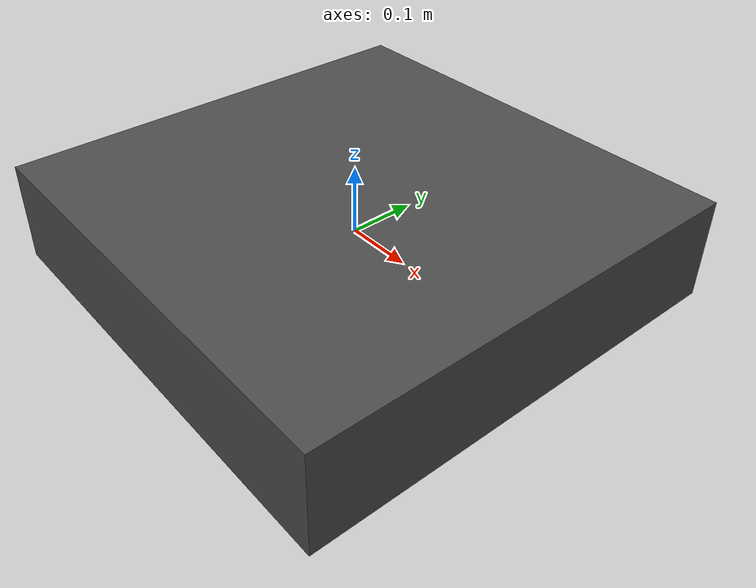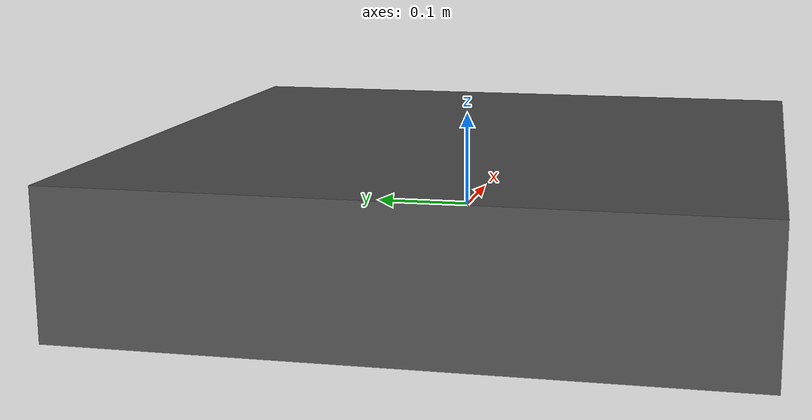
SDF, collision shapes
<sdf version='1.5'>
    <model name='borinot'>
      <link name='base_link'>
        <pose>0 0 0 0 0 0</pose>
        <inertial>
          <pose>0 0 0 0 0 0</pose>
          <mass>2.085</mass>
          <inertia>
            <ixx>0.017598</ixx>
            <ixy>0.0</ixy>
            <ixz>0.0</ixz>
            <iyy>0.017957</iyy>
            <iyz>0.0</iyz>
            <izz>0.029599</izz>
          </inertia>
        </inertial>
        <!-- TODO: check that is touching the ground -->
        <collision name='base_link_collision'>
          <pose>0 0 0.0 0 0 0</pose>
          <geometry>
            <box>
              <size>0.67 0.67 0.15</size>
            </box>
          </geometry>
          <surface>
            <contact>
              <ode>
                <min_depth>0.001</min_depth>
                <max_vel>0</max_vel>
              </ode>
            </contact>
            <friction>
              <ode/>
            </friction>
          </surface>
        </collision>
        <visual name='base_link_visual'>
          <pose>0 0 0 0 0 0</pose>
          <geometry>
            <mesh>
              <scale>1 1 1</scale>
              <!-- TODO: add specific borinot mesh -->
              <uri>model://borinot/meshes/hexacopter370.dae</uri>
            </mesh>
          </geometry>
          <material>
            <script>
              <name>Gazebo/DarkGrey</name>
              <uri>file://media/materials/scripts/gazebo.material</uri>
            </script>
          </material>
        </visual>
        <gravity>1</gravity>
        <velocity_decay/>
      </link>
      <link name='/imu_link'>
        <pose>0 0 0 0 0 0</pose>
        <inertial>
          <pose>0 0 0 0 0 0</pose>
          <mass>0.015</mass>
          <inertia>
            <ixx>1e-05</ixx>
            <ixy>0</ixy>
            <ixz>0</ixz>
            <iyy>1e-05</iyy>
            <iyz>0</iyz>
            <izz>1e-05</izz>
          </inertia>
        </inertial>
      </link>
      <joint name='imu_joint' type='revolute'>
        <child>/imu_link</child>
        <parent>base_link</parent>
        <axis>
          <xyz>1 0 0</xyz>
          <limit>
            <lower>0</lower>
            <upper>0</upper>
            <effort>0</effort>
            <velocity>0</velocity>
          </limit>
          <dynamics>
            <spring_reference>0</spring_reference>
            <spring_stiffness>0</spring_stiffness>
          </dynamics>
          <use_parent_model_frame>1</use_parent_model_frame>
        </axis>
      </joint>
      <link name='rotor_0'>
        <pose> 0 -0.185 0.05 0 0 0</pose>
        <inertial>
          <pose>0 0 0 0 0 0</pose>
          <mass>0.005</mass>
          <inertia>
            <ixx>9.75e-07</ixx>
            <ixy>0</ixy>
            <ixz>0</ixz>
            <iyy>0.000273104</iyy>
            <iyz>0</iyz>
            <izz>0.000274004</izz>
          </inertia>
        </inertial>
        <collision name='rotor_0_collision'>
          <pose>0 0 0 0 0 0</pose>
          <geometry>
            <cylinder>
              <length>0.005</length>
              <radius>0.128</radius>
            </cylinder>
          </geometry>
          <surface>
            <contact>
              <ode/>
            </contact>
            <friction>
              <ode/>
            </friction>
          </surface>
        </collision>
        <visual name='rotor_0_visual'>
          <pose>0 0 0 0 0 0</pose>
          <geometry>
            <mesh>
              <scale>1 1 1</scale>
              <uri>model://iris/meshes/iris_prop_cw.dae</uri>
            </mesh>
          </geometry>
          <material>
            <script>
              <name>Gazebo/DarkGrey</name>
              <uri>file://media/materials/scripts/gazebo.material</uri>
            </script>
          </material>
        </visual>
        <gravity>1</gravity>
        <velocity_decay/>
      </link>
      <joint name='rotor_0_joint' type='revolute'>
        <child>rotor_0</child>
        <parent>base_link</parent>
        <axis>
          <xyz>0 0 1</xyz>
          <limit>
            <lower>-1e+16</lower>
            <upper>1e+16</upper>
          </limit>
          <dynamics>
            <spring_reference>0</spring_reference>
            <spring_stiffness>0</spring_stiffness>
          </dynamics>
          <use_parent_model_frame>1</use_parent_model_frame>
        </axis>
      </joint>
      <link name='rotor_1'>
        <pose>0 0.185 0.05 0 0 0</pose>
        <inertial>
          <pose>0 0 0 0 0 0</pose>
          <mass>0.005</mass>
          <inertia>
            <ixx>9.75e-07</ixx>
            <ixy>0</ixy>
            <ixz>0</ixz>
            <iyy>0.000273104</iyy>
            <iyz>0</iyz>
            <izz>0.000274004</izz>
          </inertia>
        </inertial>
        <collision name='rotor_1_collision'>
          <pose>0 0 0 0 0 0</pose>
          <geometry>
            <cylinder>
              <length>0.005</length>
              <radius>0.128</radius>
            </cylinder>
          </geometry>
          <surface>
            <contact>
              <ode/>
            </contact>
            <friction>
              <ode/>
            </friction>
          </surface>
        </collision>
        <visual name='rotor_1_visual'>
          <pose>0 0 0 0 0 0</pose>
          <geometry>
            <mesh>
              <scale>1 1 1</scale>
              <uri>model://iris/meshes/iris_prop_ccw.dae</uri>
            </mesh>
          </geometry>
          <material>
            <script>
              <name>Gazebo/DarkGrey</name>
              <uri>file://media/materials/scripts/gazebo.material</uri>
            </script>
          </material>
        </visual>
        <gravity>1</gravity>
        <velocity_decay/>
      </link>
      <joint name='rotor_1_joint' type='revolute'>
        <child>rotor_1</child>
        <parent>base_link</parent>
        <axis>
          <xyz>0 0 1</xyz>
          <limit>
            <lower>-1e+16</lower>
            <upper>1e+16</upper>
          </limit>
          <dynamics>
            <spring_reference>0</spring_reference>
            <spring_stiffness>0</spring_stiffness>
          </dynamics>
          <use_parent_model_frame>1</use_parent_model_frame>
        </axis>
      </joint>
      <link name='rotor_2'>
        <pose>0.1602146997 0.0925 0.05 0 0 0</pose>
        <inertial>
          <pose>0 0 0 0 0 0</pose>
          <mass>0.005</mass>
          <inertia>
            <ixx>9.75e-07</ixx>
            <ixy>0</ixy>
            <ixz>0</ixz>
            <iyy>0.000273104</iyy>
            <iyz>0</iyz>
            <izz>0.000274004</izz>
          </inertia>
        </inertial>
        <collision name='rotor_2_collision'>
          <pose>0 0 0 0 0 0</pose>
          <geometry>
            <cylinder>
              <length>0.005</length>
              <radius>0.128</radius>
            </cylinder>
          </geometry>
          <surface>
            <contact>
              <ode/>
            </contact>
            <friction>
              <ode/>
            </friction>
          </surface>
        </collision>
        <visual name='rotor_2_visual'>
          <pose>0 0 0 0 0 0</pose>
          <geometry>
            <mesh>
              <scale>1 1 1</scale>
              <uri>model://iris/meshes/iris_prop_cw.dae</uri>
            </mesh>
          </geometry>
          <material>
            <script>
              <name>Gazebo/Blue</name>
              <uri>file://media/materials/scripts/gazebo.material</uri>
            </script>
          </material>
        </visual>
        <gravity>1</gravity>
        <velocity_decay/>
      </link>
      <joint name='rotor_2_joint' type='revolute'>
        <child>rotor_2</child>
        <parent>base_link</parent>
        <axis>
          <xyz>0 0 1</xyz>
          <limit>
            <lower>-1e+16</lower>
            <upper>1e+16</upper>
          </limit>
          <dynamics>
            <spring_reference>0</spring_reference>
            <spring_stiffness>0</spring_stiffness>
          </dynamics>
          <use_parent_model_frame>1</use_parent_model_frame>
        </axis>
      </joint>
      <link name='rotor_3'>
        <pose>-0.1602146997 -0.0925 0.05 0 0 0</pose>
        <inertial>
          <pose>0 0 0 0 0 0</pose>
          <mass>0.005</mass>
          <inertia>
            <ixx>9.75e-07</ixx>
            <ixy>0</ixy>
            <ixz>0</ixz>
            <iyy>0.000273104</iyy>
            <iyz>0</iyz>
            <izz>0.000274004</izz>
          </inertia>
        </inertial>
        <collision name='rotor_3_collision'>
          <pose>0 0 0 0 0 0</pose>
          <geometry>
            <cylinder>
              <length>0.005</length>
              <radius>0.128</radius>
            </cylinder>
          </geometry>
          <surface>
            <contact>
              <ode/>
            </contact>
            <friction>
              <ode/>
            </friction>
          </surface>
        </collision>
        <visual name='rotor_3_visual'>
          <pose>0 0 0 0 0 0</pose>
          <geometry>
            <mesh>
              <scale>1 1 1</scale>
              <uri>model://iris/meshes/iris_prop_ccw.dae</uri>
            </mesh>
          </geometry>
          <material>
            <script>
              <name>Gazebo/DarkGrey</name>
              <uri>file://media/materials/scripts/gazebo.material</uri>
            </script>
          </material>
        </visual>
        <gravity>1</gravity>
        <velocity_decay/>
      </link>
      <joint name='rotor_3_joint' type='revolute'>
        <child>rotor_3</child>
        <parent>base_link</parent>
        <axis>
          <xyz>0 0 1</xyz>
          <limit>
            <lower>-1e+16</lower>
            <upper>1e+16</upper>
          </limit>
          <dynamics>
            <spring_reference>0</spring_reference>
            <spring_stiffness>0</spring_stiffness>
          </dynamics>
          <use_parent_model_frame>1</use_parent_model_frame>
        </axis>
      </joint>
      <link name='rotor_4'>
        <pose>0.1602146997 -0.0925 0.05 0 0 0</pose>
        <inertial>
          <pose>0 0 0 0 0 0</pose>
          <mass>0.005</mass>
          <inertia>
            <ixx>9.75e-07</ixx>
            <ixy>0</ixy>
            <ixz>0</ixz>
            <iyy>0.000273104</iyy>
            <iyz>0</iyz>
            <izz>0.000274004</izz>
          </inertia>
        </inertial>
        <collision name='rotor_4_collision'>
          <pose>0 0 0 0 0 0</pose>
          <geometry>
            <cylinder>
              <length>0.005</length>
              <radius>0.128</radius>
            </cylinder>
          </geometry>
          <surface>
            <contact>
              <ode/>
            </contact>
            <friction>
              <ode/>
            </friction>
          </surface>
        </collision>
        <visual name='rotor_4_visual'>
          <pose>0 0 0 0 0 0</pose>
          <geometry>
            <mesh>
              <scale>1 1 1</scale>
              <uri>model://iris/meshes/iris_prop_ccw.dae</uri>
            </mesh>
          </geometry>
          <material>
            <script>
              <name>Gazebo/Blue</name>
              <uri>file://media/materials/scripts/gazebo.material</uri>
            </script>
          </material>
        </visual>
        <gravity>1</gravity>
        <velocity_decay/>
      </link>
      <joint name='rotor_4_joint' type='revolute'>
        <child>rotor_4</child>
        <parent>base_link</parent>
        <axis>
          <xyz>0 0 1</xyz>
          <limit>
            <lower>-1e+16</lower>
            <upper>1e+16</upper>
          </limit>
          <dynamics>
            <spring_reference>0</spring_reference>
            <spring_stiffness>0</spring_stiffness>
          </dynamics>
          <use_parent_model_frame>1</use_parent_model_frame>
        </axis>
      </joint>
      <link name='rotor_5'>
        <pose>-0.1602146997 0.0925 0.05 0 0 0</pose>
        <inertial>
          <pose>0 0 0 0 0 0</pose>
          <mass>0.005</mass>
          <inertia>
            <ixx>9.75e-07</ixx>
            <ixy>0</ixy>
            <ixz>0</ixz>
            <iyy>0.000273104</iyy>
            <iyz>0</iyz>
            <izz>0.000274004</izz>
          </inertia>
        </inertial>
        <collision name='rotor_5_collision'>
          <pose>0 0 0 0 0 0</pose>
          <geometry>
            <cylinder>
              <length>0.005</length>
              <radius>0.128</radius>
            </cylinder>
          </geometry>
          <surface>
            <contact>
              <ode/>
            </contact>
            <friction>
              <ode/>
            </friction>
          </surface>
        </collision>
        <visual name='rotor_5_visual'>
          <pose>0 0 0 0 0 0</pose>
          <geometry>
            <mesh>
              <scale>1 1 1</scale>
              <uri>model://iris/meshes/iris_prop_cw.dae</uri>
            </mesh>
          </geometry>
          <material>
            <script>
              <name>Gazebo/DarkGrey</name>
              <uri>file://media/materials/scripts/gazebo.material</uri>
            </script>
          </material>
        </visual>
        <gravity>1</gravity>
        <velocity_decay/>
      </link>
      <joint name='rotor_5_joint' type='revolute'>
        <child>rotor_5</child>
        <parent>base_link</parent>
        <axis>
          <xyz>0 0 1</xyz>
          <limit>
            <lower>-1e+16</lower>
            <upper>1e+16</upper>
          </limit>
          <dynamics>
            <spring_reference>0</spring_reference>
            <spring_stiffness>0</spring_stiffness>
          </dynamics>
          <use_parent_model_frame>1</use_parent_model_frame>
        </axis>
      </joint>
      <plugin name='rosbag' filename='libgazebo_multirotor_base_plugin.so'>
        <robotNamespace></robotNamespace>
        <linkName>base_link</linkName>
        <rotorVelocitySlowdownSim>10</rotorVelocitySlowdownSim>
      </plugin>
      <plugin name='right_motor_model' filename='libgazebo_motor_model.so'>
        <robotNamespace></robotNamespace>
        <jointName>rotor_0_joint</jointName>
        <linkName>rotor_0</linkName>
        <turningDirection>cw</turningDirection>
        <!-- time constant identified by sergi -->
        <timeConstantUp>0.005</timeConstantUp>
        <timeConstantDown>0.005</timeConstantDown>
        <!-- tmotor f90 kv1300 datasheet, 6S GF 7042 -->
        <!--
            max rpm: 21350 = 2236rad/s
            max thrust: 2110g = 20.6991N
            cf computed with 60% thrust values (1196g at 15400rpm)
            cf =
        -->
        <maxRotVelocity>2236</maxRotVelocity>
        <motorConstant>4.511e-06</motorConstant>
        <!-- TODO: moment constant to be identified -->
        <momentConstant>0.06</momentConstant>
        <commandSubTopic>/gazebo/command/motor_speed</commandSubTopic>
        <motorNumber>0</motorNumber>
        <!-- TODO: don't know what this constant does -->
        <rotorDragCoefficient>0.000175</rotorDragCoefficient>
        <rollingMomentCoefficient>1e-06</rollingMomentCoefficient>
        <motorSpeedPubTopic>/motor_speed/0</motorSpeedPubTopic>
        <rotorVelocitySlowdownSim>10</rotorVelocitySlowdownSim>
      </plugin>

      <plugin name='left_motor_model' filename='libgazebo_motor_model.so'>
        <robotNamespace></robotNamespace>
        <jointName>rotor_1_joint</jointName>
        <linkName>rotor_1</linkName>
        <turningDirection>ccw</turningDirection>
        <!-- time constant identified by sergi -->
        <timeConstantUp>0.005</timeConstantUp>
        <timeConstantDown>0.005</timeConstantDown>
        <!-- tmotor f90 kv1300 datasheet, 6S GF 7042 -->
        <!--
            max rpm: 21350 = 2236rad/s
            max thrust: 2110g = 20.6991N
            cf computed with 60% thrust values (1196g at 15400rpm)
            cf =
        -->
        <maxRotVelocity>2236</maxRotVelocity>
        <motorConstant>4.511e-06</motorConstant>
        <!-- TODO: moment constant to be identified -->
        <momentConstant>0.06</momentConstant>
        <commandSubTopic>/gazebo/command/motor_speed</commandSubTopic>
        <motorNumber>1</motorNumber>
        <!-- TODO: don't know what this constant does -->
        <rotorDragCoefficient>0.000175</rotorDragCoefficient>
        <rollingMomentCoefficient>1e-06</rollingMomentCoefficient>
        <motorSpeedPubTopic>/motor_speed/1</motorSpeedPubTopic>
        <rotorVelocitySlowdownSim>10</rotorVelocitySlowdownSim>
      </plugin>

      <plugin name='left_front_motor_model' filename='libgazebo_motor_model.so'>
        <robotNamespace></robotNamespace>
        <jointName>rotor_2_joint</jointName>
        <linkName>rotor_2</linkName>
        <turningDirection>cw</turningDirection>
        <!-- time constant identified by sergi -->
        <timeConstantUp>0.005</timeConstantUp>
        <timeConstantDown>0.005</timeConstantDown>
        <!-- tmotor f90 kv1300 datasheet, 6S GF 7042 -->
        <!--
            max rpm: 21350 = 2236rad/s
            max thrust: 2110g = 20.6991N
            cf computed with 60% thrust values (1196g at 15400rpm)
            cf =
        -->
        <maxRotVelocity>2236</maxRotVelocity>
        <motorConstant>4.511e-06</motorConstant>
        <!-- TODO: moment constant to be identified -->
        <momentConstant>0.06</momentConstant>
        <commandSubTopic>/gazebo/command/motor_speed</commandSubTopic>
        <motorNumber>2</motorNumber>
        <!-- TODO: don't know what this constant does -->
        <rotorDragCoefficient>0.000175</rotorDragCoefficient>
        <rollingMomentCoefficient>1e-06</rollingMomentCoefficient>
        <motorSpeedPubTopic>/motor_speed/2</motorSpeedPubTopic>
        <rotorVelocitySlowdownSim>10</rotorVelocitySlowdownSim>
      </plugin>

      <plugin name='right_back_motor_model' filename='libgazebo_motor_model.so'>
        <robotNamespace></robotNamespace>
        <jointName>rotor_3_joint</jointName>
        <linkName>rotor_3</linkName>
        <turningDirection>ccw</turningDirection>
        <!-- time constant identified by sergi -->
        <timeConstantUp>0.005</timeConstantUp>
        <timeConstantDown>0.005</timeConstantDown>
        <!-- tmotor f90 kv1300 datasheet, 6S GF 7042 -->
        <!--
            max rpm: 21350 = 2236rad/s
            max thrust: 2110g = 20.6991N
            cf computed with 60% thrust values (1196g at 15400rpm)
            cf =
        -->
        <maxRotVelocity>2236</maxRotVelocity>
        <motorConstant>4.511e-06</motorConstant>
        <!-- TODO: moment constant to be identified -->
        <momentConstant>0.06</momentConstant>
        <commandSubTopic>/gazebo/command/motor_speed</commandSubTopic>
        <motorNumber>3</motorNumber>
        <!-- TODO: don't know what this constant does -->
        <rotorDragCoefficient>0.000175</rotorDragCoefficient>
        <rollingMomentCoefficient>1e-06</rollingMomentCoefficient>
        <motorSpeedPubTopic>/motor_speed/3</motorSpeedPubTopic>
        <rotorVelocitySlowdownSim>10</rotorVelocitySlowdownSim>
      </plugin>

      <plugin name='right_front_motor_model' filename='libgazebo_motor_model.so'>
        <robotNamespace></robotNamespace>
        <jointName>rotor_4_joint</jointName>
        <linkName>rotor_4</linkName>
        <turningDirection>ccw</turningDirection>
        <!-- time constant identified by sergi -->
        <timeConstantUp>0.005</timeConstantUp>
        <timeConstantDown>0.005</timeConstantDown>
        <!-- tmotor f90 kv1300 datasheet, 6S GF 7042 -->
        <!--
            max rpm: 21350 = 2236rad/s
            max thrust: 2110g = 20.6991N
            cf computed with 60% thrust values (1196g at 15400rpm)
            cf =
        -->
        <maxRotVelocity>2236</maxRotVelocity>
        <motorConstant>4.511e-06</motorConstant>
        <!-- TODO: moment constant to be identified -->
        <momentConstant>0.06</momentConstant>
        <commandSubTopic>/gazebo/command/motor_speed</commandSubTopic>
        <motorNumber>4</motorNumber>
        <!-- TODO: don't know what this constant does -->
        <rotorDragCoefficient>0.000175</rotorDragCoefficient>
        <rollingMomentCoefficient>1e-06</rollingMomentCoefficient>
        <motorSpeedPubTopic>/motor_speed/4</motorSpeedPubTopic>
        <rotorVelocitySlowdownSim>10</rotorVelocitySlowdownSim>
      </plugin>

      <plugin name='left_back_motor_model' filename='libgazebo_motor_model.so'>
        <robotNamespace></robotNamespace>
        <jointName>rotor_5_joint</jointName>
        <linkName>rotor_5</linkName>
        <turningDirection>cw</turningDirection>
        <!-- time constant identified by sergi -->
        <timeConstantUp>0.005</timeConstantUp>
        <timeConstantDown>0.005</timeConstantDown>
        <!-- tmotor f90 kv1300 datasheet, 6S GF 7042 -->
        <!--
            max rpm: 21350 = 2236rad/s
            max thrust: 2110g = 20.6991N
            cf computed with 60% thrust values (1196g at 15400rpm)
            cf =
        -->
        <maxRotVelocity>2236</maxRotVelocity>
        <motorConstant>4.511e-06</motorConstant>
        <!-- TODO: moment constant to be identified -->
        <momentConstant>0.06</momentConstant>
        <commandSubTopic>/gazebo/command/motor_speed</commandSubTopic>
        <motorNumber>5</motorNumber>
        <!-- TODO: don't know what this constant does -->
        <rotorDragCoefficient>0.000175</rotorDragCoefficient>
        <rollingMomentCoefficient>1e-06</rollingMomentCoefficient>
        <motorSpeedPubTopic>/motor_speed/5</motorSpeedPubTopic>
        <rotorVelocitySlowdownSim>10</rotorVelocitySlowdownSim>
      </plugin>
      <include>
        <uri>model://gps</uri>
        <pose>0.1 0 0 0 0 0</pose>
        <name>gps0</name>
      </include>
      <joint name='gps0_joint' type='fixed'>
        <child>gps0::link</child>
        <parent>base_link</parent>
      </joint>
      <plugin name='groundtruth_plugin' filename='libgazebo_groundtruth_plugin.so'>
        <robotNamespace/>
      </plugin>
      <plugin name='magnetometer_plugin' filename='libgazebo_magnetometer_plugin.so'>
        <robotNamespace/>
        <pubRate>100</pubRate>
        <noiseDensity>0.0004</noiseDensity>
        <randomWalk>6.4e-06</randomWalk>
        <biasCorrelationTime>600</biasCorrelationTime>
        <magTopic>/mag</magTopic>
      </plugin>
      <plugin name='barometer_plugin' filename='libgazebo_barometer_plugin.so'>
        <robotNamespace/>
        <pubRate>50</pubRate>
        <baroTopic>/baro</baroTopic>
      </plugin>
      <plugin name='mavlink_interface' filename='libgazebo_mavlink_interface.so'>
      <robotNamespace/>
      <imuSubTopic>/imu</imuSubTopic>
      <magSubTopic>/mag</magSubTopic>
      <baroSubTopic>/baro</baroSubTopic>
      <mavlink_addr>INADDR_ANY</mavlink_addr>
      <mavlink_tcp_port>4560</mavlink_tcp_port>
      <mavlink_udp_port>14560</mavlink_udp_port>
      <serialEnabled>0</serialEnabled>
      <serialDevice>/dev/ttyACM0</serialDevice>
      <baudRate>921600</baudRate>
      <qgc_addr>INADDR_ANY</qgc_addr>
      <qgc_udp_port>14550</qgc_udp_port>
      <sdk_addr>INADDR_ANY</sdk_addr>
      <sdk_udp_port>14540</sdk_udp_port>
      <hil_mode>0</hil_mode>
      <hil_state_level>0</hil_state_level>
      <send_vision_estimation>0</send_vision_estimation>
      <send_odometry>1</send_odometry>
      <enable_lockstep>1</enable_lockstep>
      <use_tcp>1</use_tcp>
      <motorSpeedCommandPubTopic>/gazebo/command/motor_speed</motorSpeedCommandPubTopic>
        <control_channels>
            <channel name='rotor1'>
              <input_index>0</input_index>
              <input_offset>0</input_offset>
              <input_scaling>2136</input_scaling>
              <zero_position_disarmed>0</zero_position_disarmed>
              <zero_position_armed>100</zero_position_armed>
              <joint_control_type>velocity</joint_control_type>
            </channel>
            <channel name='rotor2'>
              <input_index>1</input_index>
              <input_offset>0</input_offset>
              <input_scaling>2136</input_scaling>
              <zero_position_disarmed>0</zero_position_disarmed>
              <zero_position_armed>100</zero_position_armed>
              <joint_control_type>velocity</joint_control_type>
            </channel>
            <channel name='rotor3'>
              <input_index>2</input_index>
              <input_offset>0</input_offset>
              <input_scaling>2136</input_scaling>
              <zero_position_disarmed>0</zero_position_disarmed>
              <zero_position_armed>100</zero_position_armed>
              <joint_control_type>velocity</joint_control_type>
            </channel>
            <channel name='rotor4'>
              <input_index>3</input_index>
              <input_offset>0</input_offset>
              <input_scaling>2136</input_scaling>
              <zero_position_disarmed>0</zero_position_disarmed>
              <zero_position_armed>100</zero_position_armed>
              <joint_control_type>velocity</joint_control_type>
            </channel>
            <channel name='rotor5'>
              <input_index>4</input_index>
              <input_offset>0</input_offset>
              <input_scaling>2136</input_scaling>
              <zero_position_disarmed>0</zero_position_disarmed>
              <zero_position_armed>100</zero_position_armed>
              <joint_control_type>velocity</joint_control_type>
            </channel>
            <channel name='rotor6'>
              <input_index>5</input_index>
              <input_offset>0</input_offset>
              <input_scaling>2136</input_scaling>
              <zero_position_disarmed>0</zero_position_disarmed>
              <zero_position_armed>100</zero_position_armed>
              <joint_control_type>velocity</joint_control_type>
            </channel>
          </control_channels>
      </plugin>
      <static>0</static>
      <plugin name='rotors_gazebo_imu_plugin' filename='libgazebo_imu_plugin.so'>
        <robotNamespace/>
        <linkName>/imu_link</linkName>
        <imuTopic>/imu</imuTopic>
        <gyroscopeNoiseDensity>0.0</gyroscopeNoiseDensity>
        <gyroscopeRandomWalk>0.0</gyroscopeRandomWalk>
        <gyroscopeBiasCorrelationTime>1000.0</gyroscopeBiasCorrelationTime>
        <gyroscopeTurnOnBiasSigma>0.00</gyroscopeTurnOnBiasSigma>
        <accelerometerNoiseDensity>0.0</accelerometerNoiseDensity>
        <accelerometerRandomWalk>0.0</accelerometerRandomWalk>
        <accelerometerBiasCorrelationTime>300.0</accelerometerBiasCorrelationTime>
        <accelerometerTurnOnBiasSigma>0.0</accelerometerTurnOnBiasSigma>
      </plugin>
    </model>
  </sdf>

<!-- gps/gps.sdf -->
<sdf version="1.6">
  <model name="gps">
    <link name="link">
      <pose>0 0 0 0 0 0</pose>
      <inertial>
        <pose>0 0 0 0 0 0</pose>
        <mass>0.015</mass>
        <inertia>
          <ixx>1e-05</ixx>
          <ixy>0</ixy>
          <ixz>0</ixz>
          <iyy>1e-05</iyy>
          <iyz>0</iyz>
          <izz>1e-05</izz>
        </inertia>
      </inertial>
      <visual name="visual">
        <geometry>
          <cylinder>
            <radius>0.01</radius>
            <length>0.002</length>
          </cylinder>
        </geometry>
        <material>
          <script>
            <name>Gazebo/Black</name>
          </script>
        </material>
      </visual>
      <sensor name="gps" type="gps">
        <pose>0 0 0 0 0 0</pose>
        <update_rate>5.0</update_rate>
        <always_on>true</always_on>
        <visualize>false</visualize>
        <!-- GpsSensor noise currently not used -->
        <plugin name="gps_plugin" filename="libgazebo_gps_plugin.so">
          <robotNamespace></robotNamespace>
          <gpsXYRandomWalk>0.2</gpsXYRandomWalk>
          <gpsZRandomWalk>0.4</gpsZRandomWalk>
          <gpsXYNoiseDensity>2.0e-5</gpsXYNoiseDensity>
          <gpsZNoiseDensity>4.0e-5</gpsZNoiseDensity>
          <gpsVXYNoiseDensity>0.02</gpsVXYNoiseDensity>
          <gpsVZNoiseDensity>0.04</gpsVZNoiseDensity>
        </plugin>
      </sensor>
    </link>
  </model>
</sdf>
